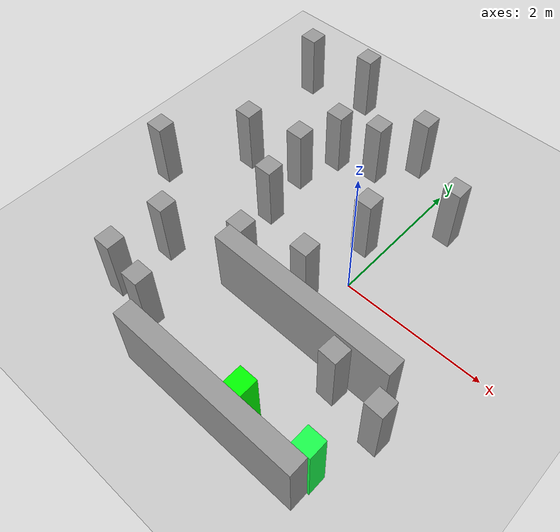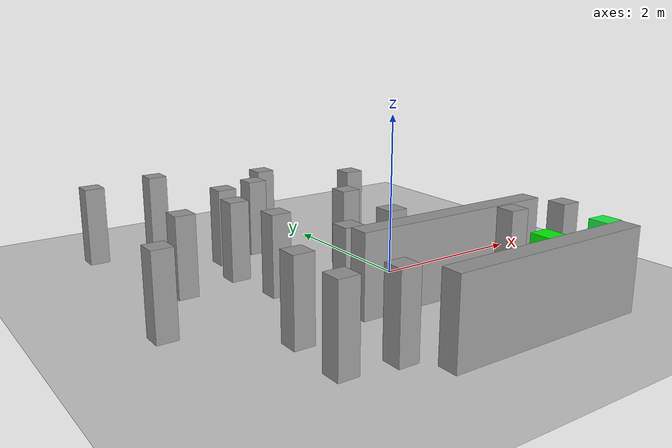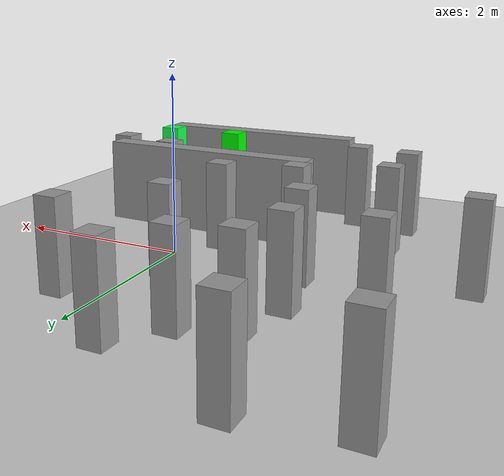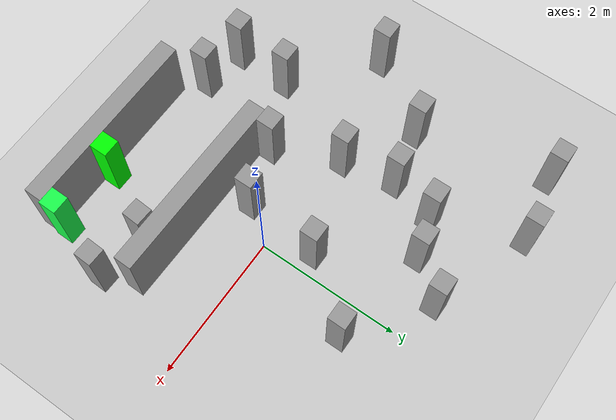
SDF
<sdf version="1.7">
 <world name="default">
  <light name="sun" type="directional">
   <pose>0 0 10 0 -0 0</pose>
   <diffuse>0.8 0.8 0.8 1</diffuse>
   <specular>0.2 0.2 0.2 1</specular>
   <attenuation>
    <range>1000</range>
    <constant>0.9</constant>
    <linear>0.01</linear>
    <quadratic>0.001</quadratic>
   </attenuation>
   <direction>-0.5 0.1 -0.9</direction>
   <spot><inner_angle>0</inner_angle><outer_angle>0</outer_angle><falloff>0</falloff></spot>
  </light>
  <model name="ground_plane">
   <static>1</static>
   <link name="link">
    <collision name="collision">
     <geometry><plane><normal>0 0 1</normal><size>100 100</size></plane></geometry>
     <surface><friction><ode><mu>100</mu><mu2>50</mu2></ode></friction></surface>
    </collision>
    <visual name="visual">
     <cast_shadows>0</cast_shadows>
     <geometry><plane><normal>0 0 1</normal><size>100 100</size></plane></geometry>
     <material>
      <script><uri>file://media/materials/scripts/gazebo.material</uri><name>Gazebo/Grey</name></script>
     </material>
    </visual>
   </link>
  </model>
  <gravity>0 0 -9.8</gravity>
  <magnetic_field>6e-06 2.3e-05 -4.2e-05</magnetic_field>
  <atmosphere type="adiabatic"/>
  <physics type="ode">
   <max_step_size>0.001</max_step_size>
   <real_time_factor>1</real_time_factor>
   <real_time_update_rate>1000</real_time_update_rate>
  </physics>
  <scene><ambient>0.4 0.4 0.4 1</ambient><background>0.7 0.7 0.7 1</background><shadows>1</shadows></scene>
  <spherical_coordinates>
   <surface_model>EARTH_WGS84</surface_model>
   <latitude_deg>0</latitude_deg>
   <longitude_deg>0</longitude_deg>
   <elevation>0</elevation>
   <heading_deg>0</heading_deg>
  </spherical_coordinates>
  <audio><device>default</device></audio>
  <model name="unit_box">
   <link name="link">
    <inertial>
     <mass>1</mass>
     <inertia>
      <ixx>0.166667</ixx>
      <ixy>0</ixy>
      <ixz>0</ixz>
      <iyy>0.166667</iyy>
      <iyz>0</iyz>
      <izz>0.166667</izz>
     </inertia>
    </inertial>
    <pose>-0.617061 0 -0 0 -0 0</pose>
    <visual name="visual">
     <geometry><box><size>0.25 0.25 1</size></box></geometry>
     <material>
      <script><name>Gazebo/Grey</name><uri>file://media/materials/scripts/gazebo.material</uri></script>
      <shader type="pixel"><normal_map>__default__</normal_map></shader>
      <ambient>0.3 0.3 0.3 1</ambient>
      <diffuse>0.7 0.7 0.7 1</diffuse>
      <specular>0.01 0.01 0.01 1</specular>
      <emissive>0 0 0 1</emissive>
     </material>
    </visual>
    <collision name="collision">
     <geometry><box><size>0.25 0.25 1</size></box></geometry>
     <surface>
      <friction>
       <ode><mu>1</mu><mu2>1</mu2><fdir1>0 0 0</fdir1><slip1>0</slip1><slip2>0</slip2></ode>
       <torsional>
        <coefficient>1</coefficient>
        <patch_radius>0</patch_radius>
        <surface_radius>0</surface_radius>
        <use_patch_radius>1</use_patch_radius>
        <ode><slip>0</slip></ode>
       </torsional>
      </friction>
      <bounce><restitution_coefficient>0</restitution_coefficient><threshold>1e+06</threshold></bounce>
      <contact>
       <collide_without_contact>0</collide_without_contact>
       <collide_without_contact_bitmask>1</collide_without_contact_bitmask>
       <collide_bitmask>1</collide_bitmask>
       <ode>
        <soft_cfm>0</soft_cfm>
        <soft_erp>0.2</soft_erp>
        <kp>1e+13</kp>
        <kd>1</kd>
        <max_vel>0.01</max_vel>
        <min_depth>0</min_depth>
       </ode>
       <bullet>
        <split_impulse>1</split_impulse>
        <split_impulse_penetration_threshold>-0.01</split_impulse_penetration_threshold>
        <soft_cfm>0</soft_cfm>
        <soft_erp>0.2</soft_erp>
        <kp>1e+13</kp>
        <kd>1</kd>
       </bullet>
      </contact>
     </surface>
    </collision>
   </link>
   <static>0</static>
   <pose>0.049891 2.22878 0.5 -2e-06 -1e-06 1.9e-05</pose>
  </model>
  <model name="unit_box_clone">
   <link name="link">
    <inertial>
     <mass>1</mass>
     <inertia>
      <ixx>0.166667</ixx>
      <ixy>0</ixy>
      <ixz>0</ixz>
      <iyy>0.166667</iyy>
      <iyz>0</iyz>
      <izz>0.166667</izz>
     </inertia>
    </inertial>
    <pose>-0.617061 0 -0 0 -0 0</pose>
    <visual name="visual">
     <geometry><box><size>0.25 0.25 1</size></box></geometry>
     <material>
      <script><name>Gazebo/Grey</name><uri>file://media/materials/scripts/gazebo.material</uri></script>
      <shader type="pixel"><normal_map>__default__</normal_map></shader>
      <ambient>0.3 0.3 0.3 1</ambient>
      <diffuse>0.7 0.7 0.7 1</diffuse>
      <specular>0.01 0.01 0.01 1</specular>
      <emissive>0 0 0 1</emissive>
     </material>
    </visual>
    <collision name="collision">
     <geometry><box><size>0.25 0.25 1</size></box></geometry>
     <surface>
      <friction>
       <ode><mu>1</mu><mu2>1</mu2><fdir1>0 0 0</fdir1><slip1>0</slip1><slip2>0</slip2></ode>
       <torsional>
        <coefficient>1</coefficient>
        <patch_radius>0</patch_radius>
        <surface_radius>0</surface_radius>
        <use_patch_radius>1</use_patch_radius>
        <ode><slip>0</slip></ode>
       </torsional>
      </friction>
      <bounce><restitution_coefficient>0</restitution_coefficient><threshold>1e+06</threshold></bounce>
      <contact>
       <collide_without_contact>0</collide_without_contact>
       <collide_without_contact_bitmask>1</collide_without_contact_bitmask>
       <collide_bitmask>1</collide_bitmask>
       <ode>
        <soft_cfm>0</soft_cfm>
        <soft_erp>0.2</soft_erp>
        <kp>1e+13</kp>
        <kd>1</kd>
        <max_vel>0.01</max_vel>
        <min_depth>0</min_depth>
       </ode>
       <bullet>
        <split_impulse>1</split_impulse>
        <split_impulse_penetration_threshold>-0.01</split_impulse_penetration_threshold>
        <soft_cfm>0</soft_cfm>
        <soft_erp>0.2</soft_erp>
        <kp>1e+13</kp>
        <kd>1</kd>
       </bullet>
      </contact>
     </surface>
    </collision>
   </link>
   <static>0</static>
   <pose>1.06352 1.49334 0.500001 1e-06 -2e-06 7.8e-05</pose>
  </model>
  <model name="unit_box_clone_0">
   <link name="link">
    <inertial>
     <mass>1</mass>
     <inertia>
      <ixx>0.166667</ixx>
      <ixy>0</ixy>
      <ixz>0</ixz>
      <iyy>0.166667</iyy>
      <iyz>0</iyz>
      <izz>0.166667</izz>
     </inertia>
    </inertial>
    <pose>-0.617061 0 -0 0 -0 0</pose>
    <visual name="visual">
     <geometry><box><size>0.25 0.25 1</size></box></geometry>
     <material>
      <script><name>Gazebo/Grey</name><uri>file://media/materials/scripts/gazebo.material</uri></script>
      <shader type="pixel"><normal_map>__default__</normal_map></shader>
      <ambient>0.3 0.3 0.3 1</ambient>
      <diffuse>0.7 0.7 0.7 1</diffuse>
      <specular>0.01 0.01 0.01 1</specular>
      <emissive>0 0 0 1</emissive>
     </material>
    </visual>
    <collision name="collision">
     <geometry><box><size>0.25 0.25 1</size></box></geometry>
     <surface>
      <friction>
       <ode><mu>1</mu><mu2>1</mu2><fdir1>0 0 0</fdir1><slip1>0</slip1><slip2>0</slip2></ode>
       <torsional>
        <coefficient>1</coefficient>
        <patch_radius>0</patch_radius>
        <surface_radius>0</surface_radius>
        <use_patch_radius>1</use_patch_radius>
        <ode><slip>0</slip></ode>
       </torsional>
      </friction>
      <bounce><restitution_coefficient>0</restitution_coefficient><threshold>1e+06</threshold></bounce>
      <contact>
       <collide_without_contact>0</collide_without_contact>
       <collide_without_contact_bitmask>1</collide_without_contact_bitmask>
       <collide_bitmask>1</collide_bitmask>
       <ode>
        <soft_cfm>0</soft_cfm>
        <soft_erp>0.2</soft_erp>
        <kp>1e+13</kp>
        <kd>1</kd>
        <max_vel>0.01</max_vel>
        <min_depth>0</min_depth>
       </ode>
       <bullet>
        <split_impulse>1</split_impulse>
        <split_impulse_penetration_threshold>-0.01</split_impulse_penetration_threshold>
        <soft_cfm>0</soft_cfm>
        <soft_erp>0.2</soft_erp>
        <kp>1e+13</kp>
        <kd>1</kd>
       </bullet>
      </contact>
     </surface>
    </collision>
   </link>
   <static>0</static>
   <pose>0.366948 0.612786 0.5 -2e-06 -2e-06 3e-05</pose>
  </model>
  <model name="unit_box_clone_0_clone">
   <link name="link">
    <inertial>
     <mass>1</mass>
     <inertia>
      <ixx>0.166667</ixx>
      <ixy>0</ixy>
      <ixz>0</ixz>
      <iyy>0.166667</iyy>
      <iyz>0</iyz>
      <izz>0.166667</izz>
     </inertia>
    </inertial>
    <pose>-0.617061 0 -0 0 -0 0</pose>
    <visual name="visual">
     <geometry><box><size>0.25 0.25 1</size></box></geometry>
     <material>
      <script><name>Gazebo/Grey</name><uri>file://media/materials/scripts/gazebo.material</uri></script>
      <shader type="pixel"><normal_map>__default__</normal_map></shader>
      <ambient>0.3 0.3 0.3 1</ambient>
      <diffuse>0.7 0.7 0.7 1</diffuse>
      <specular>0.01 0.01 0.01 1</specular>
      <emissive>0 0 0 1</emissive>
     </material>
    </visual>
    <collision name="collision">
     <geometry><box><size>0.25 0.25 1</size></box></geometry>
     <surface>
      <friction>
       <ode><mu>1</mu><mu2>1</mu2><fdir1>0 0 0</fdir1><slip1>0</slip1><slip2>0</slip2></ode>
       <torsional>
        <coefficient>1</coefficient>
        <patch_radius>0</patch_radius>
        <surface_radius>0</surface_radius>
        <use_patch_radius>1</use_patch_radius>
        <ode><slip>0</slip></ode>
       </torsional>
      </friction>
      <bounce><restitution_coefficient>0</restitution_coefficient><threshold>1e+06</threshold></bounce>
      <contact>
       <collide_without_contact>0</collide_without_contact>
       <collide_without_contact_bitmask>1</collide_without_contact_bitmask>
       <collide_bitmask>1</collide_bitmask>
       <ode>
        <soft_cfm>0</soft_cfm>
        <soft_erp>0.2</soft_erp>
        <kp>1e+13</kp>
        <kd>1</kd>
        <max_vel>0.01</max_vel>
        <min_depth>0</min_depth>
       </ode>
       <bullet>
        <split_impulse>1</split_impulse>
        <split_impulse_penetration_threshold>-0.01</split_impulse_penetration_threshold>
        <soft_cfm>0</soft_cfm>
        <soft_erp>0.2</soft_erp>
        <kp>1e+13</kp>
        <kd>1</kd>
       </bullet>
      </contact>
     </surface>
    </collision>
   </link>
   <static>0</static>
   <pose>-0.905228 1.55149 0.499999 -3e-06 1e-06 2.7e-05</pose>
  </model>
  <model name="unit_box_clone_0_clone_0">
   <link name="link">
    <inertial>
     <mass>1</mass>
     <inertia>
      <ixx>0.166667</ixx>
      <ixy>0</ixy>
      <ixz>0</ixz>
      <iyy>0.166667</iyy>
      <iyz>0</iyz>
      <izz>0.166667</izz>
     </inertia>
    </inertial>
    <pose>-0.617061 0 -0 0 -0 0</pose>
    <visual name="visual">
     <geometry><box><size>0.25 0.25 1</size></box></geometry>
     <material>
      <script><name>Gazebo/Grey</name><uri>file://media/materials/scripts/gazebo.material</uri></script>
      <shader type="pixel"><normal_map>__default__</normal_map></shader>
      <ambient>0.3 0.3 0.3 1</ambient>
      <diffuse>0.7 0.7 0.7 1</diffuse>
      <specular>0.01 0.01 0.01 1</specular>
      <emissive>0 0 0 1</emissive>
     </material>
    </visual>
    <collision name="collision">
     <geometry><box><size>0.25 0.25 1</size></box></geometry>
     <surface>
      <friction>
       <ode><mu>1</mu><mu2>1</mu2><fdir1>0 0 0</fdir1><slip1>0</slip1><slip2>0</slip2></ode>
       <torsional>
        <coefficient>1</coefficient>
        <patch_radius>0</patch_radius>
        <surface_radius>0</surface_radius>
        <use_patch_radius>1</use_patch_radius>
        <ode><slip>0</slip></ode>
       </torsional>
      </friction>
      <bounce><restitution_coefficient>0</restitution_coefficient><threshold>1e+06</threshold></bounce>
      <contact>
       <collide_without_contact>0</collide_without_contact>
       <collide_without_contact_bitmask>1</collide_without_contact_bitmask>
       <collide_bitmask>1</collide_bitmask>
       <ode>
        <soft_cfm>0</soft_cfm>
        <soft_erp>0.2</soft_erp>
        <kp>1e+13</kp>
        <kd>1</kd>
        <max_vel>0.01</max_vel>
        <min_depth>0</min_depth>
       </ode>
       <bullet>
        <split_impulse>1</split_impulse>
        <split_impulse_penetration_threshold>-0.01</split_impulse_penetration_threshold>
        <soft_cfm>0</soft_cfm>
        <soft_erp>0.2</soft_erp>
        <kp>1e+13</kp>
        <kd>1</kd>
       </bullet>
      </contact>
     </surface>
    </collision>
   </link>
   <static>0</static>
   <pose>-1.852 0.745775 0.500001 -1e-06 -3e-06 7.3e-05</pose>
  </model>
  <model name="unit_box_clone_0_clone_1">
   <link name="link">
    <inertial>
     <mass>1</mass>
     <inertia>
      <ixx>0.166667</ixx>
      <ixy>0</ixy>
      <ixz>0</ixz>
      <iyy>0.166667</iyy>
      <iyz>0</iyz>
      <izz>0.166667</izz>
     </inertia>
    </inertial>
    <pose>-0.617061 0 -0 0 -0 0</pose>
    <visual name="visual">
     <geometry><box><size>0.25 0.25 1</size></box></geometry>
     <material>
      <script><name>Gazebo/Grey</name><uri>file://media/materials/scripts/gazebo.material</uri></script>
      <shader type="pixel"><normal_map>__default__</normal_map></shader>
      <ambient>0.3 0.3 0.3 1</ambient>
      <diffuse>0.7 0.7 0.7 1</diffuse>
      <specular>0.01 0.01 0.01 1</specular>
      <emissive>0 0 0 1</emissive>
     </material>
    </visual>
    <collision name="collision">
     <geometry><box><size>0.25 0.25 1</size></box></geometry>
     <surface>
      <friction>
       <ode><mu>1</mu><mu2>1</mu2><fdir1>0 0 0</fdir1><slip1>0</slip1><slip2>0</slip2></ode>
       <torsional>
        <coefficient>1</coefficient>
        <patch_radius>0</patch_radius>
        <surface_radius>0</surface_radius>
        <use_patch_radius>1</use_patch_radius>
        <ode><slip>0</slip></ode>
       </torsional>
      </friction>
      <bounce><restitution_coefficient>0</restitution_coefficient><threshold>1e+06</threshold></bounce>
      <contact>
       <collide_without_contact>0</collide_without_contact>
       <collide_without_contact_bitmask>1</collide_without_contact_bitmask>
       <collide_bitmask>1</collide_bitmask>
       <ode>
        <soft_cfm>0</soft_cfm>
        <soft_erp>0.2</soft_erp>
        <kp>1e+13</kp>
        <kd>1</kd>
        <max_vel>0.01</max_vel>
        <min_depth>0</min_depth>
       </ode>
       <bullet>
        <split_impulse>1</split_impulse>
        <split_impulse_penetration_threshold>-0.01</split_impulse_penetration_threshold>
        <soft_cfm>0</soft_cfm>
        <soft_erp>0.2</soft_erp>
        <kp>1e+13</kp>
        <kd>1</kd>
       </bullet>
      </contact>
     </surface>
    </collision>
   </link>
   <static>0</static>
   <pose>-2.28004 2.54755 0.499999 -3e-06 1e-06 4.5e-05</pose>
  </model>
  <model name="unit_box_clone_0_clone_2">
   <link name="link">
    <inertial>
     <mass>1</mass>
     <inertia>
      <ixx>0.166667</ixx>
      <ixy>0</ixy>
      <ixz>0</ixz>
      <iyy>0.166667</iyy>
      <iyz>0</iyz>
      <izz>0.166667</izz>
     </inertia>
    </inertial>
    <pose>-0.617061 0 -0 0 -0 0</pose>
    <visual name="visual">
     <geometry><box><size>0.25 0.25 1</size></box></geometry>
     <material>
      <script><name>Gazebo/Grey</name><uri>file://media/materials/scripts/gazebo.material</uri></script>
      <shader type="pixel"><normal_map>__default__</normal_map></shader>
      <ambient>0.3 0.3 0.3 1</ambient>
      <diffuse>0.7 0.7 0.7 1</diffuse>
      <specular>0.01 0.01 0.01 1</specular>
      <emissive>0 0 0 1</emissive>
     </material>
    </visual>
    <collision name="collision">
     <geometry><box><size>0.25 0.25 1</size></box></geometry>
     <surface>
      <friction>
       <ode><mu>1</mu><mu2>1</mu2><fdir1>0 0 0</fdir1><slip1>0</slip1><slip2>0</slip2></ode>
       <torsional>
        <coefficient>1</coefficient>
        <patch_radius>0</patch_radius>
        <surface_radius>0</surface_radius>
        <use_patch_radius>1</use_patch_radius>
        <ode><slip>0</slip></ode>
       </torsional>
      </friction>
      <bounce><restitution_coefficient>0</restitution_coefficient><threshold>1e+06</threshold></bounce>
      <contact>
       <collide_without_contact>0</collide_without_contact>
       <collide_without_contact_bitmask>1</collide_without_contact_bitmask>
       <collide_bitmask>1</collide_bitmask>
       <ode>
        <soft_cfm>0</soft_cfm>
        <soft_erp>0.2</soft_erp>
        <kp>1e+13</kp>
        <kd>1</kd>
        <max_vel>0.01</max_vel>
        <min_depth>0</min_depth>
       </ode>
       <bullet>
        <split_impulse>1</split_impulse>
        <split_impulse_penetration_threshold>-0.01</split_impulse_penetration_threshold>
        <soft_cfm>0</soft_cfm>
        <soft_erp>0.2</soft_erp>
        <kp>1e+13</kp>
        <kd>1</kd>
       </bullet>
      </contact>
     </surface>
    </collision>
   </link>
   <static>0</static>
   <pose>-0.363541 1.7294 0.500001 2e-06 -1e-06 6.3e-05</pose>
  </model>
  <model name="unit_box_clone_0_clone_3">
   <link name="link">
    <inertial>
     <mass>1</mass>
     <inertia>
      <ixx>0.166667</ixx>
      <ixy>0</ixy>
      <ixz>0</ixz>
      <iyy>0.166667</iyy>
      <iyz>0</iyz>
      <izz>0.166667</izz>
     </inertia>
    </inertial>
    <pose>-0.617061 0 -0 0 -0 0</pose>
    <visual name="visual">
     <geometry><box><size>0.25 0.25 1</size></box></geometry>
     <material>
      <script><name>Gazebo/Grey</name><uri>file://media/materials/scripts/gazebo.material</uri></script>
      <shader type="pixel"><normal_map>__default__</normal_map></shader>
      <ambient>0.3 0.3 0.3 1</ambient>
      <diffuse>0.7 0.7 0.7 1</diffuse>
      <specular>0.01 0.01 0.01 1</specular>
      <emissive>0 0 0 1</emissive>
     </material>
    </visual>
    <collision name="collision">
     <geometry><box><size>0.25 0.25 1</size></box></geometry>
     <surface>
      <friction>
       <ode><mu>1</mu><mu2>1</mu2><fdir1>0 0 0</fdir1><slip1>0</slip1><slip2>0</slip2></ode>
       <torsional>
        <coefficient>1</coefficient>
        <patch_radius>0</patch_radius>
        <surface_radius>0</surface_radius>
        <use_patch_radius>1</use_patch_radius>
        <ode><slip>0</slip></ode>
       </torsional>
      </friction>
      <bounce><restitution_coefficient>0</restitution_coefficient><threshold>1e+06</threshold></bounce>
      <contact>
       <collide_without_contact>0</collide_without_contact>
       <collide_without_contact_bitmask>1</collide_without_contact_bitmask>
       <collide_bitmask>1</collide_bitmask>
       <ode>
        <soft_cfm>0</soft_cfm>
        <soft_erp>0.2</soft_erp>
        <kp>1e+13</kp>
        <kd>1</kd>
        <max_vel>0.01</max_vel>
        <min_depth>0</min_depth>
       </ode>
       <bullet>
        <split_impulse>1</split_impulse>
        <split_impulse_penetration_threshold>-0.01</split_impulse_penetration_threshold>
        <soft_cfm>0</soft_cfm>
        <soft_erp>0.2</soft_erp>
        <kp>1e+13</kp>
        <kd>1</kd>
       </bullet>
      </contact>
     </surface>
    </collision>
   </link>
   <static>0</static>
   <pose>-0.930949 0.183481 0.499999 -2e-06 1e-06 4.3e-05</pose>
  </model>
  <model name="unit_box_clone_0_clone_2_clone">
   <link name="link">
    <inertial>
     <mass>1</mass>
     <inertia>
      <ixx>0.166667</ixx>
      <ixy>0</ixy>
      <ixz>0</ixz>
      <iyy>0.166667</iyy>
      <iyz>0</iyz>
      <izz>0.166667</izz>
     </inertia>
    </inertial>
    <pose>-0.617061 0 -0 0 -0 0</pose>
    <visual name="visual">
     <geometry><box><size>0.25 0.25 1</size></box></geometry>
     <material>
      <script><name>Gazebo/Grey</name><uri>file://media/materials/scripts/gazebo.material</uri></script>
      <shader type="pixel"><normal_map>__default__</normal_map></shader>
      <ambient>0.3 0.3 0.3 1</ambient>
      <diffuse>0.7 0.7 0.7 1</diffuse>
      <specular>0.01 0.01 0.01 1</specular>
      <emissive>0 0 0 1</emissive>
     </material>
    </visual>
    <collision name="collision">
     <geometry><box><size>0.25 0.25 1</size></box></geometry>
     <surface>
      <friction>
       <ode><mu>1</mu><mu2>1</mu2><fdir1>0 0 0</fdir1><slip1>0</slip1><slip2>0</slip2></ode>
       <torsional>
        <coefficient>1</coefficient>
        <patch_radius>0</patch_radius>
        <surface_radius>0</surface_radius>
        <use_patch_radius>1</use_patch_radius>
        <ode><slip>0</slip></ode>
       </torsional>
      </friction>
      <bounce><restitution_coefficient>0</restitution_coefficient><threshold>1e+06</threshold></bounce>
      <contact>
       <collide_without_contact>0</collide_without_contact>
       <collide_without_contact_bitmask>1</collide_without_contact_bitmask>
       <collide_bitmask>1</collide_bitmask>
       <ode>
        <soft_cfm>0</soft_cfm>
        <soft_erp>0.2</soft_erp>
        <kp>1e+13</kp>
        <kd>1</kd>
        <max_vel>0.01</max_vel>
        <min_depth>0</min_depth>
       </ode>
       <bullet>
        <split_impulse>1</split_impulse>
        <split_impulse_penetration_threshold>-0.01</split_impulse_penetration_threshold>
        <soft_cfm>0</soft_cfm>
        <soft_erp>0.2</soft_erp>
        <kp>1e+13</kp>
        <kd>1</kd>
       </bullet>
      </contact>
     </surface>
    </collision>
   </link>
   <static>0</static>
   <pose>-1.07026 0.9241 0.500001 2e-06 -2e-06 7.1e-05</pose>
  </model>
  <model name="unit_box_clone_0_clone_2_clone_0">
   <link name="link">
    <inertial>
     <mass>1</mass>
     <inertia>
      <ixx>0.166667</ixx>
      <ixy>0</ixy>
      <ixz>0</ixz>
      <iyy>0.166667</iyy>
      <iyz>0</iyz>
      <izz>0.166667</izz>
     </inertia>
    </inertial>
    <pose>-0.617061 0 -0 0 -0 0</pose>
    <visual name="visual">
     <geometry><box><size>0.25 0.25 1</size></box></geometry>
     <material>
      <script><name>Gazebo/Grey</name><uri>file://media/materials/scripts/gazebo.material</uri></script>
      <shader type="pixel"><normal_map>__default__</normal_map></shader>
      <ambient>0.3 0.3 0.3 1</ambient>
      <diffuse>0.7 0.7 0.7 1</diffuse>
      <specular>0.01 0.01 0.01 1</specular>
      <emissive>0 0 0 1</emissive>
     </material>
    </visual>
    <collision name="collision">
     <geometry><box><size>0.25 0.25 1</size></box></geometry>
     <surface>
      <friction>
       <ode><mu>1</mu><mu2>1</mu2><fdir1>0 0 0</fdir1><slip1>0</slip1><slip2>0</slip2></ode>
       <torsional>
        <coefficient>1</coefficient>
        <patch_radius>0</patch_radius>
        <surface_radius>0</surface_radius>
        <use_patch_radius>1</use_patch_radius>
        <ode><slip>0</slip></ode>
       </torsional>
      </friction>
      <bounce><restitution_coefficient>0</restitution_coefficient><threshold>1e+06</threshold></bounce>
      <contact>
       <collide_without_contact>0</collide_without_contact>
       <collide_without_contact_bitmask>1</collide_without_contact_bitmask>
       <collide_bitmask>1</collide_bitmask>
       <ode>
        <soft_cfm>0</soft_cfm>
        <soft_erp>0.2</soft_erp>
        <kp>1e+13</kp>
        <kd>1</kd>
        <max_vel>0.01</max_vel>
        <min_depth>0</min_depth>
       </ode>
       <bullet>
        <split_impulse>1</split_impulse>
        <split_impulse_penetration_threshold>-0.01</split_impulse_penetration_threshold>
        <soft_cfm>0</soft_cfm>
        <soft_erp>0.2</soft_erp>
        <kp>1e+13</kp>
        <kd>1</kd>
       </bullet>
      </contact>
     </surface>
    </collision>
   </link>
   <static>0</static>
   <pose>-1.35376 2.72908 0.500004 3e-06 -6e-06 2.6e-05</pose>
  </model>
  <model name="unit_box_clone_0_clone_3_clone">
   <link name="link">
    <inertial>
     <mass>1</mass>
     <inertia>
      <ixx>0.166667</ixx>
      <ixy>0</ixy>
      <ixz>0</ixz>
      <iyy>0.166667</iyy>
      <iyz>0</iyz>
      <izz>0.166667</izz>
     </inertia>
    </inertial>
    <pose>-0.617061 0 -0 0 -0 0</pose>
    <visual name="visual">
     <geometry><box><size>0.25 0.25 1</size></box></geometry>
     <material>
      <script><name>Gazebo/Grey</name><uri>file://media/materials/scripts/gazebo.material</uri></script>
      <shader type="pixel"><normal_map>__default__</normal_map></shader>
      <ambient>0.3 0.3 0.3 1</ambient>
      <diffuse>0.7 0.7 0.7 1</diffuse>
      <specular>0.01 0.01 0.01 1</specular>
      <emissive>0 0 0 1</emissive>
     </material>
    </visual>
    <collision name="collision">
     <geometry><box><size>0.25 0.25 1</size></box></geometry>
     <surface>
      <friction>
       <ode><mu>1</mu><mu2>1</mu2><fdir1>0 0 0</fdir1><slip1>0</slip1><slip2>0</slip2></ode>
       <torsional>
        <coefficient>1</coefficient>
        <patch_radius>0</patch_radius>
        <surface_radius>0</surface_radius>
        <use_patch_radius>1</use_patch_radius>
        <ode><slip>0</slip></ode>
       </torsional>
      </friction>
      <bounce><restitution_coefficient>0</restitution_coefficient><threshold>1e+06</threshold></bounce>
      <contact>
       <collide_without_contact>0</collide_without_contact>
       <collide_without_contact_bitmask>1</collide_without_contact_bitmask>
       <collide_bitmask>1</collide_bitmask>
       <ode>
        <soft_cfm>0</soft_cfm>
        <soft_erp>0.2</soft_erp>
        <kp>1e+13</kp>
        <kd>1</kd>
        <max_vel>0.01</max_vel>
        <min_depth>0</min_depth>
       </ode>
       <bullet>
        <split_impulse>1</split_impulse>
        <split_impulse_penetration_threshold>-0.01</split_impulse_penetration_threshold>
        <soft_cfm>0</soft_cfm>
        <soft_erp>0.2</soft_erp>
        <kp>1e+13</kp>
        <kd>1</kd>
       </bullet>
      </contact>
     </surface>
    </collision>
   </link>
   <static>0</static>
   <pose>-0.544834 -0.709368 0.499999 3e-06 3e-06 -0.011047</pose>
  </model>
  <model name="unit_box_clone_0_clone_3_clone_0">
   <link name="link">
    <inertial>
     <mass>1</mass>
     <inertia>
      <ixx>0.166667</ixx>
      <ixy>0</ixy>
      <ixz>0</ixz>
      <iyy>0.166667</iyy>
      <iyz>0</iyz>
      <izz>0.166667</izz>
     </inertia>
    </inertial>
    <pose>-0.617061 0 -0 0 -0 0</pose>
    <visual name="visual">
     <geometry><box><size>0.25 0.25 1</size></box></geometry>
     <material>
      <script><name>Gazebo/Grey</name><uri>file://media/materials/scripts/gazebo.material</uri></script>
      <shader type="pixel"><normal_map>__default__</normal_map></shader>
      <ambient>0.3 0.3 0.3 1</ambient>
      <diffuse>0.7 0.7 0.7 1</diffuse>
      <specular>0.01 0.01 0.01 1</specular>
      <emissive>0 0 0 1</emissive>
     </material>
    </visual>
    <collision name="collision">
     <geometry><box><size>0.25 0.25 1</size></box></geometry>
     <surface>
      <friction>
       <ode><mu>1</mu><mu2>1</mu2><fdir1>0 0 0</fdir1><slip1>0</slip1><slip2>0</slip2></ode>
       <torsional>
        <coefficient>1</coefficient>
        <patch_radius>0</patch_radius>
        <surface_radius>0</surface_radius>
        <use_patch_radius>1</use_patch_radius>
        <ode><slip>0</slip></ode>
       </torsional>
      </friction>
      <bounce><restitution_coefficient>0</restitution_coefficient><threshold>1e+06</threshold></bounce>
      <contact>
       <collide_without_contact>0</collide_without_contact>
       <collide_without_contact_bitmask>1</collide_without_contact_bitmask>
       <collide_bitmask>1</collide_bitmask>
       <ode>
        <soft_cfm>0</soft_cfm>
        <soft_erp>0.2</soft_erp>
        <kp>1e+13</kp>
        <kd>1</kd>
        <max_vel>0.01</max_vel>
        <min_depth>0</min_depth>
       </ode>
       <bullet>
        <split_impulse>1</split_impulse>
        <split_impulse_penetration_threshold>-0.01</split_impulse_penetration_threshold>
        <soft_cfm>0</soft_cfm>
        <soft_erp>0.2</soft_erp>
        <kp>1e+13</kp>
        <kd>1</kd>
       </bullet>
      </contact>
     </surface>
    </collision>
   </link>
   <static>0</static>
   <pose>0.260598 -0.44495 0.499998 -1e-06 2e-06 9e-06</pose>
  </model>
  <model name="unit_box_clone_0_clone_3_clone_1">
   <link name="link">
    <inertial>
     <mass>1</mass>
     <inertia>
      <ixx>0.166667</ixx>
      <ixy>0</ixy>
      <ixz>0</ixz>
      <iyy>0.166667</iyy>
      <iyz>0</iyz>
      <izz>0.166667</izz>
     </inertia>
    </inertial>
    <pose>-0.617061 0 -0 0 -0 0</pose>
    <visual name="visual">
     <geometry><box><size>0.25 0.25 1</size></box></geometry>
     <material>
      <script><name>Gazebo/Grey</name><uri>file://media/materials/scripts/gazebo.material</uri></script>
      <shader type="pixel"><normal_map>__default__</normal_map></shader>
      <ambient>0.3 0.3 0.3 1</ambient>
      <diffuse>0.7 0.7 0.7 1</diffuse>
      <specular>0.01 0.01 0.01 1</specular>
      <emissive>0 0 0 1</emissive>
     </material>
    </visual>
    <collision name="collision">
     <geometry><box><size>0.25 0.25 1</size></box></geometry>
     <surface>
      <friction>
       <ode><mu>1</mu><mu2>1</mu2><fdir1>0 0 0</fdir1><slip1>0</slip1><slip2>0</slip2></ode>
       <torsional>
        <coefficient>1</coefficient>
        <patch_radius>0</patch_radius>
        <surface_radius>0</surface_radius>
        <use_patch_radius>1</use_patch_radius>
        <ode><slip>0</slip></ode>
       </torsional>
      </friction>
      <bounce><restitution_coefficient>0</restitution_coefficient><threshold>1e+06</threshold></bounce>
      <contact>
       <collide_without_contact>0</collide_without_contact>
       <collide_without_contact_bitmask>1</collide_without_contact_bitmask>
       <collide_bitmask>1</collide_bitmask>
       <ode>
        <soft_cfm>0</soft_cfm>
        <soft_erp>0.2</soft_erp>
        <kp>1e+13</kp>
        <kd>1</kd>
        <max_vel>0.01</max_vel>
        <min_depth>0</min_depth>
       </ode>
       <bullet>
        <split_impulse>1</split_impulse>
        <split_impulse_penetration_threshold>-0.01</split_impulse_penetration_threshold>
        <soft_cfm>0</soft_cfm>
        <soft_erp>0.2</soft_erp>
        <kp>1e+13</kp>
        <kd>1</kd>
       </bullet>
      </contact>
     </surface>
    </collision>
   </link>
   <static>0</static>
   <pose>-1.48142 -1.14222 0.5 2e-06 -0 3e-05</pose>
  </model>
  <model name="unit_box_clone_0_clone_3_clone_2">
   <link name="link">
    <inertial>
     <mass>1</mass>
     <inertia>
      <ixx>0.166667</ixx>
      <ixy>0</ixy>
      <ixz>0</ixz>
      <iyy>0.166667</iyy>
      <iyz>0</iyz>
      <izz>0.166667</izz>
     </inertia>
    </inertial>
    <pose>-0.617061 0 -0 0 -0 0</pose>
    <visual name="visual">
     <geometry><box><size>0.25 0.25 1</size></box></geometry>
     <material>
      <script><name>Gazebo/Grey</name><uri>file://media/materials/scripts/gazebo.material</uri></script>
      <shader type="pixel"><normal_map>__default__</normal_map></shader>
      <ambient>0.3 0.3 0.3 1</ambient>
      <diffuse>0.7 0.7 0.7 1</diffuse>
      <specular>0.01 0.01 0.01 1</specular>
      <emissive>0 0 0 1</emissive>
     </material>
    </visual>
    <collision name="collision">
     <geometry><box><size>0.25 0.25 1</size></box></geometry>
     <surface>
      <friction>
       <ode><mu>1</mu><mu2>1</mu2><fdir1>0 0 0</fdir1><slip1>0</slip1><slip2>0</slip2></ode>
       <torsional>
        <coefficient>1</coefficient>
        <patch_radius>0</patch_radius>
        <surface_radius>0</surface_radius>
        <use_patch_radius>1</use_patch_radius>
        <ode><slip>0</slip></ode>
       </torsional>
      </friction>
      <bounce><restitution_coefficient>0</restitution_coefficient><threshold>1e+06</threshold></bounce>
      <contact>
       <collide_without_contact>0</collide_without_contact>
       <collide_without_contact_bitmask>1</collide_without_contact_bitmask>
       <collide_bitmask>1</collide_bitmask>
       <ode>
        <soft_cfm>0</soft_cfm>
        <soft_erp>0.2</soft_erp>
        <kp>1e+13</kp>
        <kd>1</kd>
        <max_vel>0.01</max_vel>
        <min_depth>0</min_depth>
       </ode>
       <bullet>
        <split_impulse>1</split_impulse>
        <split_impulse_penetration_threshold>-0.01</split_impulse_penetration_threshold>
        <soft_cfm>0</soft_cfm>
        <soft_erp>0.2</soft_erp>
        <kp>1e+13</kp>
        <kd>1</kd>
       </bullet>
      </contact>
     </surface>
    </collision>
   </link>
   <static>0</static>
   <pose>-2.54188 -0.240853 0.5 2e-06 -1e-06 1.9e-05</pose>
  </model>
  <model name="unit_box_clone_0_clone_3_clone_1_clone">
   <link name="link">
    <inertial>
     <mass>10.5367</mass>
     <inertia><ixx>0.93294</ixx><ixy>0</ixy><ixz>0</ixz><iyy>6.97085</iyy><iyz>0</iyz><izz>6.14767</izz></inertia>
    </inertial>
    <pose>-0.617061 0 -0 0 -0 0</pose>
    <visual name="visual">
     <geometry><box><size>2.63418 0.25 1</size></box></geometry>
     <material>
      <script><name>Gazebo/Grey</name><uri>file://media/materials/scripts/gazebo.material</uri></script>
      <shader type="pixel"><normal_map>__default__</normal_map></shader>
      <ambient>0.3 0.3 0.3 1</ambient>
      <diffuse>0.7 0.7 0.7 1</diffuse>
      <specular>0.01 0.01 0.01 1</specular>
      <emissive>0 0 0 1</emissive>
     </material>
    </visual>
    <collision name="collision">
     <geometry><box><size>2.63418 0.25 1</size></box></geometry>
     <surface>
      <friction>
       <ode><mu>1</mu><mu2>1</mu2><fdir1>0 0 0</fdir1><slip1>0</slip1><slip2>0</slip2></ode>
       <torsional>
        <coefficient>1</coefficient>
        <patch_radius>0</patch_radius>
        <surface_radius>0</surface_radius>
        <use_patch_radius>1</use_patch_radius>
        <ode><slip>0</slip></ode>
       </torsional>
      </friction>
      <bounce><restitution_coefficient>0</restitution_coefficient><threshold>1e+06</threshold></bounce>
      <contact>
       <collide_without_contact>0</collide_without_contact>
       <collide_without_contact_bitmask>1</collide_without_contact_bitmask>
       <collide_bitmask>1</collide_bitmask>
       <ode>
        <soft_cfm>0</soft_cfm>
        <soft_erp>0.2</soft_erp>
        <kp>1e+13</kp>
        <kd>1</kd>
        <max_vel>0.01</max_vel>
        <min_depth>0</min_depth>
       </ode>
       <bullet>
        <split_impulse>1</split_impulse>
        <split_impulse_penetration_threshold>-0.01</split_impulse_penetration_threshold>
        <soft_cfm>0</soft_cfm>
        <soft_erp>0.2</soft_erp>
        <kp>1e+13</kp>
        <kd>1</kd>
       </bullet>
      </contact>
     </surface>
    </collision>
   </link>
   <static>0</static>
   <pose>0.66616 -2.42805 0.5 0 0 -0.002767</pose>
  </model>
  <model name="unit_box_clone_0_clone_3_clone_1_clone_clone">
   <link name="link">
    <inertial>
     <mass>10.5367</mass>
     <inertia><ixx>0.93294</ixx><ixy>0</ixy><ixz>0</ixz><iyy>6.97085</iyy><iyz>0</iyz><izz>6.14767</izz></inertia>
    </inertial>
    <pose>-0.617061 0 -0 0 -0 0</pose>
    <visual name="visual">
     <geometry><box><size>2.63418 0.25 1</size></box></geometry>
     <material>
      <script><name>Gazebo/Grey</name><uri>file://media/materials/scripts/gazebo.material</uri></script>
      <shader type="pixel"><normal_map>__default__</normal_map></shader>
      <ambient>0.3 0.3 0.3 1</ambient>
      <diffuse>0.7 0.7 0.7 1</diffuse>
      <specular>0.01 0.01 0.01 1</specular>
      <emissive>0 0 0 1</emissive>
     </material>
    </visual>
    <collision name="collision">
     <geometry><box><size>2.63418 0.25 1</size></box></geometry>
     <surface>
      <friction>
       <ode><mu>1</mu><mu2>1</mu2><fdir1>0 0 0</fdir1><slip1>0</slip1><slip2>0</slip2></ode>
       <torsional>
        <coefficient>1</coefficient>
        <patch_radius>0</patch_radius>
        <surface_radius>0</surface_radius>
        <use_patch_radius>1</use_patch_radius>
        <ode><slip>0</slip></ode>
       </torsional>
      </friction>
      <bounce><restitution_coefficient>0</restitution_coefficient><threshold>1e+06</threshold></bounce>
      <contact>
       <collide_without_contact>0</collide_without_contact>
       <collide_without_contact_bitmask>1</collide_without_contact_bitmask>
       <collide_bitmask>1</collide_bitmask>
       <ode>
        <soft_cfm>0</soft_cfm>
        <soft_erp>0.2</soft_erp>
        <kp>1e+13</kp>
        <kd>1</kd>
        <max_vel>0.01</max_vel>
        <min_depth>0</min_depth>
       </ode>
       <bullet>
        <split_impulse>1</split_impulse>
        <split_impulse_penetration_threshold>-0.01</split_impulse_penetration_threshold>
        <soft_cfm>0</soft_cfm>
        <soft_erp>0.2</soft_erp>
        <kp>1e+13</kp>
        <kd>1</kd>
       </bullet>
      </contact>
     </surface>
    </collision>
   </link>
   <static>0</static>
   <pose>0.714116 -0.97358 0.499998 -2e-06 1e-06 -0.011171</pose>
  </model>
  <model name="unit_box_clone_0_clone_3_clone_0_clone_0">
   <link name="link">
    <inertial>
     <mass>1</mass>
     <inertia>
      <ixx>0.166667</ixx>
      <ixy>0</ixy>
      <ixz>0</ixz>
      <iyy>0.166667</iyy>
      <iyz>0</iyz>
      <izz>0.166667</izz>
     </inertia>
    </inertial>
    <pose>-0.617061 0 -0 0 -0 0</pose>
    <visual name="visual">
     <geometry><box><size>0.25 0.25 1</size></box></geometry>
     <material>
      <script><name>Gazebo/Grey</name><uri>file://media/materials/scripts/gazebo.material</uri></script>
      <shader type="pixel"><normal_map>__default__</normal_map></shader>
      <ambient>0.3 0.3 0.3 1</ambient>
      <diffuse>0.7 0.7 0.7 1</diffuse>
      <specular>0.01 0.01 0.01 1</specular>
      <emissive>0 0 0 1</emissive>
     </material>
    </visual>
    <collision name="collision">
     <geometry><box><size>0.25 0.25 1</size></box></geometry>
     <surface>
      <friction>
       <ode><mu>1</mu><mu2>1</mu2><fdir1>0 0 0</fdir1><slip1>0</slip1><slip2>0</slip2></ode>
       <torsional>
        <coefficient>1</coefficient>
        <patch_radius>0</patch_radius>
        <surface_radius>0</surface_radius>
        <use_patch_radius>1</use_patch_radius>
        <ode><slip>0</slip></ode>
       </torsional>
      </friction>
      <bounce><restitution_coefficient>0</restitution_coefficient><threshold>1e+06</threshold></bounce>
      <contact>
       <collide_without_contact>0</collide_without_contact>
       <collide_without_contact_bitmask>1</collide_without_contact_bitmask>
       <collide_bitmask>1</collide_bitmask>
       <ode>
        <soft_cfm>0</soft_cfm>
        <soft_erp>0.2</soft_erp>
        <kp>1e+13</kp>
        <kd>1</kd>
        <max_vel>0.01</max_vel>
        <min_depth>0</min_depth>
       </ode>
       <bullet>
        <split_impulse>1</split_impulse>
        <split_impulse_penetration_threshold>-0.01</split_impulse_penetration_threshold>
        <soft_cfm>0</soft_cfm>
        <soft_erp>0.2</soft_erp>
        <kp>1e+13</kp>
        <kd>1</kd>
       </bullet>
      </contact>
     </surface>
    </collision>
   </link>
   <static>0</static>
   <pose>1.41817 -1.28709 0.500002 0 -2e-06 -0.050323</pose>
  </model>
  <model name="unit_box_clone_0_clone_3_clone_0_clone_4">
   <link name="link">
    <inertial>
     <mass>1</mass>
     <inertia>
      <ixx>0.166667</ixx>
      <ixy>0</ixy>
      <ixz>0</ixz>
      <iyy>0.166667</iyy>
      <iyz>0</iyz>
      <izz>0.166667</izz>
     </inertia>
    </inertial>
    <pose>-0.617061 0 -0 0 -0 0</pose>
    <visual name="visual">
     <geometry><box><size>0.25 0.25 1</size></box></geometry>
     <material>
      <script><name>Gazebo/Grey</name><uri>file://media/materials/scripts/gazebo.material</uri></script>
      <shader type="pixel"><normal_map>__default__</normal_map></shader>
      <ambient>0.3 0.3 0.3 1</ambient>
      <diffuse>0.7 0.7 0.7 1</diffuse>
      <specular>0.01 0.01 0.01 1</specular>
      <emissive>0 0 0 1</emissive>
     </material>
    </visual>
    <collision name="collision">
     <geometry><box><size>0.25 0.25 1</size></box></geometry>
     <surface>
      <friction>
       <ode><mu>1</mu><mu2>1</mu2><fdir1>0 0 0</fdir1><slip1>0</slip1><slip2>0</slip2></ode>
       <torsional>
        <coefficient>1</coefficient>
        <patch_radius>0</patch_radius>
        <surface_radius>0</surface_radius>
        <use_patch_radius>1</use_patch_radius>
        <ode><slip>0</slip></ode>
       </torsional>
      </friction>
      <bounce><restitution_coefficient>0</restitution_coefficient><threshold>1e+06</threshold></bounce>
      <contact>
       <collide_without_contact>0</collide_without_contact>
       <collide_without_contact_bitmask>1</collide_without_contact_bitmask>
       <collide_bitmask>1</collide_bitmask>
       <ode>
        <soft_cfm>0</soft_cfm>
        <soft_erp>0.2</soft_erp>
        <kp>1e+13</kp>
        <kd>1</kd>
        <max_vel>0.01</max_vel>
        <min_depth>0</min_depth>
       </ode>
       <bullet>
        <split_impulse>1</split_impulse>
        <split_impulse_penetration_threshold>-0.01</split_impulse_penetration_threshold>
        <soft_cfm>0</soft_cfm>
        <soft_erp>0.2</soft_erp>
        <kp>1e+13</kp>
        <kd>1</kd>
       </bullet>
      </contact>
     </surface>
    </collision>
   </link>
   <static>0</static>
   <pose>2.14676 -1.41181 0.5 2e-06 -0 -0.029969</pose>
  </model>
  <model name="unit_box_clone_0_clone_3_clone_0_clone_6">
   <link name="link">
    <inertial>
     <mass>1</mass>
     <inertia>
      <ixx>0.166667</ixx>
      <ixy>0</ixy>
      <ixz>0</ixz>
      <iyy>0.166667</iyy>
      <iyz>0</iyz>
      <izz>0.166667</izz>
     </inertia>
    </inertial>
    <pose>-0.617061 0 -0 0 -0 0</pose>
    <visual name="visual">
     <geometry><box><size>0.25 0.25 1</size></box></geometry>
     <material>
      <script><name>Gazebo/Grey</name><uri>file://media/materials/scripts/gazebo.material</uri></script>
      <shader type="pixel"><normal_map>__default__</normal_map></shader>
      <ambient>0.3 0.3 0.3 1</ambient>
      <diffuse>0.7 0.7 0.7 1</diffuse>
      <specular>0.01 0.01 0.01 1</specular>
      <emissive>0 0 0 1</emissive>
     </material>
    </visual>
    <collision name="collision">
     <geometry><box><size>0.25 0.25 1</size></box></geometry>
     <surface>
      <friction>
       <ode><mu>1</mu><mu2>1</mu2><fdir1>0 0 0</fdir1><slip1>0</slip1><slip2>0</slip2></ode>
       <torsional>
        <coefficient>1</coefficient>
        <patch_radius>0</patch_radius>
        <surface_radius>0</surface_radius>
        <use_patch_radius>1</use_patch_radius>
        <ode><slip>0</slip></ode>
       </torsional>
      </friction>
      <bounce><restitution_coefficient>0</restitution_coefficient><threshold>1e+06</threshold></bounce>
      <contact>
       <collide_without_contact>0</collide_without_contact>
       <collide_without_contact_bitmask>1</collide_without_contact_bitmask>
       <collide_bitmask>1</collide_bitmask>
       <ode>
        <soft_cfm>0</soft_cfm>
        <soft_erp>0.2</soft_erp>
        <kp>1e+13</kp>
        <kd>1</kd>
        <max_vel>0.01</max_vel>
        <min_depth>0</min_depth>
       </ode>
       <bullet>
        <split_impulse>1</split_impulse>
        <split_impulse_penetration_threshold>-0.01</split_impulse_penetration_threshold>
        <soft_cfm>0</soft_cfm>
        <soft_erp>0.2</soft_erp>
        <kp>1e+13</kp>
        <kd>1</kd>
       </bullet>
      </contact>
     </surface>
    </collision>
   </link>
   <static>0</static>
   <pose>-0.882182 -2.02641 0.499999 -1e-06 1e-06 5e-06</pose>
  </model>
  <model name="unit_box_clone_0_clone_3_clone_0_clone_7">
   <link name="link">
    <inertial>
     <mass>1</mass>
     <inertia>
      <ixx>0.166667</ixx>
      <ixy>0</ixy>
      <ixz>0</ixz>
      <iyy>0.166667</iyy>
      <iyz>0</iyz>
      <izz>0.166667</izz>
     </inertia>
    </inertial>
    <pose>-0.617061 0 -0 0 -0 0</pose>
    <visual name="visual">
     <geometry><box><size>0.25 0.25 1</size></box></geometry>
     <material>
      <script><name>Gazebo/Grey</name><uri>file://media/materials/scripts/gazebo.material</uri></script>
      <shader type="pixel"><normal_map>__default__</normal_map></shader>
      <ambient>0.3 0.3 0.3 1</ambient>
      <diffuse>0.7 0.7 0.7 1</diffuse>
      <specular>0.01 0.01 0.01 1</specular>
      <emissive>0 0 0 1</emissive>
     </material>
    </visual>
    <collision name="collision">
     <geometry><box><size>0.25 0.25 1</size></box></geometry>
     <surface>
      <friction>
       <ode><mu>1</mu><mu2>1</mu2><fdir1>0 0 0</fdir1><slip1>0</slip1><slip2>0</slip2></ode>
       <torsional>
        <coefficient>1</coefficient>
        <patch_radius>0</patch_radius>
        <surface_radius>0</surface_radius>
        <use_patch_radius>1</use_patch_radius>
        <ode><slip>0</slip></ode>
       </torsional>
      </friction>
      <bounce><restitution_coefficient>0</restitution_coefficient><threshold>1e+06</threshold></bounce>
      <contact>
       <collide_without_contact>0</collide_without_contact>
       <collide_without_contact_bitmask>1</collide_without_contact_bitmask>
       <collide_bitmask>1</collide_bitmask>
       <ode>
        <soft_cfm>0</soft_cfm>
        <soft_erp>0.2</soft_erp>
        <kp>1e+13</kp>
        <kd>1</kd>
        <max_vel>0.01</max_vel>
        <min_depth>0</min_depth>
       </ode>
       <bullet>
        <split_impulse>1</split_impulse>
        <split_impulse_penetration_threshold>-0.01</split_impulse_penetration_threshold>
        <soft_cfm>0</soft_cfm>
        <soft_erp>0.2</soft_erp>
        <kp>1e+13</kp>
        <kd>1</kd>
       </bullet>
      </contact>
     </surface>
    </collision>
   </link>
   <static>0</static>
   <pose>-1.50887 -1.92171 0.499999 0 2e-06 2.8e-05</pose>
  </model>
  <model name="unit_box_clone_0_clone_3_clone_0_clone">
   <link name="link">
    <inertial>
     <mass>1</mass>
     <inertia>
      <ixx>0.166667</ixx>
      <ixy>0</ixy>
      <ixz>0</ixz>
      <iyy>0.166667</iyy>
      <iyz>0</iyz>
      <izz>0.166667</izz>
     </inertia>
    </inertial>
    <pose>-0.617061 -0 0 0 -0 0</pose>
    <visual name="visual">
     <geometry><box><size>0.25 0.25 1</size></box></geometry>
     <material>
      <script><name>Gazebo/Grey</name><uri>file://media/materials/scripts/gazebo.material</uri></script>
      <shader type="pixel"><normal_map>__default__</normal_map></shader>
      <ambient>0 1 0 1</ambient>
      <diffuse>0.7 0.7 0.7 1</diffuse>
      <specular>0.01 0.01 0.01 1</specular>
      <emissive>0 0 0 1</emissive>
     </material>
    </visual>
    <collision name="collision">
     <geometry><box><size>0.25 0.25 1</size></box></geometry>
     <surface>
      <friction>
       <ode><mu>1</mu><mu2>1</mu2><fdir1>0 0 0</fdir1><slip1>0</slip1><slip2>0</slip2></ode>
       <torsional>
        <coefficient>1</coefficient>
        <patch_radius>0</patch_radius>
        <surface_radius>0</surface_radius>
        <use_patch_radius>1</use_patch_radius>
        <ode><slip>0</slip></ode>
       </torsional>
      </friction>
      <bounce><restitution_coefficient>0</restitution_coefficient><threshold>1e+06</threshold></bounce>
      <contact>
       <collide_without_contact>0</collide_without_contact>
       <collide_without_contact_bitmask>1</collide_without_contact_bitmask>
       <collide_bitmask>1</collide_bitmask>
       <ode>
        <soft_cfm>0</soft_cfm>
        <soft_erp>0.2</soft_erp>
        <kp>1e+13</kp>
        <kd>1</kd>
        <max_vel>0.01</max_vel>
        <min_depth>0</min_depth>
       </ode>
       <bullet>
        <split_impulse>1</split_impulse>
        <split_impulse_penetration_threshold>-0.01</split_impulse_penetration_threshold>
        <soft_cfm>0</soft_cfm>
        <soft_erp>0.2</soft_erp>
        <kp>1e+13</kp>
        <kd>1</kd>
       </bullet>
      </contact>
     </surface>
    </collision>
   </link>
   <static>0</static>
   <pose>0.941464 -2.17879 0.5 -3e-06 -1e-06 -0.002769</pose>
  </model>
  <model name="unit_box_clone_0_clone_3_clone_0_clone_3">
   <link name="link">
    <inertial>
     <mass>1</mass>
     <inertia>
      <ixx>0.166667</ixx>
      <ixy>0</ixy>
      <ixz>0</ixz>
      <iyy>0.166667</iyy>
      <iyz>0</iyz>
      <izz>0.166667</izz>
     </inertia>
    </inertial>
    <pose>-0.617061 -0 0 0 -0 0</pose>
    <visual name="visual">
     <geometry><box><size>0.25 0.25 1</size></box></geometry>
     <material>
      <script><name>Gazebo/Grey</name><uri>file://media/materials/scripts/gazebo.material</uri></script>
      <shader type="pixel"><normal_map>__default__</normal_map></shader>
      <ambient>0.1 1 0.3 1</ambient>
      <diffuse>0.7 0.7 0.7 1</diffuse>
      <specular>0.01 0.01 0.01 1</specular>
      <emissive>0 0 0 1</emissive>
     </material>
    </visual>
    <collision name="collision">
     <geometry><box><size>0.25 0.25 1</size></box></geometry>
     <surface>
      <friction>
       <ode><mu>1</mu><mu2>1</mu2><fdir1>0 0 0</fdir1><slip1>0</slip1><slip2>0</slip2></ode>
       <torsional>
        <coefficient>1</coefficient>
        <patch_radius>0</patch_radius>
        <surface_radius>0</surface_radius>
        <use_patch_radius>1</use_patch_radius>
        <ode><slip>0</slip></ode>
       </torsional>
      </friction>
      <bounce><restitution_coefficient>0</restitution_coefficient><threshold>1e+06</threshold></bounce>
      <contact>
       <collide_without_contact>0</collide_without_contact>
       <collide_without_contact_bitmask>1</collide_without_contact_bitmask>
       <collide_bitmask>1</collide_bitmask>
       <ode>
        <soft_cfm>0</soft_cfm>
        <soft_erp>0.2</soft_erp>
        <kp>1e+13</kp>
        <kd>1</kd>
        <max_vel>0.01</max_vel>
        <min_depth>0</min_depth>
       </ode>
       <bullet>
        <split_impulse>1</split_impulse>
        <split_impulse_penetration_threshold>-0.01</split_impulse_penetration_threshold>
        <soft_cfm>0</soft_cfm>
        <soft_erp>0.2</soft_erp>
        <kp>1e+13</kp>
        <kd>1</kd>
       </bullet>
      </contact>
     </surface>
    </collision>
   </link>
   <static>0</static>
   <pose>1.88743 -2.18082 0.499999 -1e-06 2e-06 -0.001974</pose>
  </model>
 </world>
</sdf>
